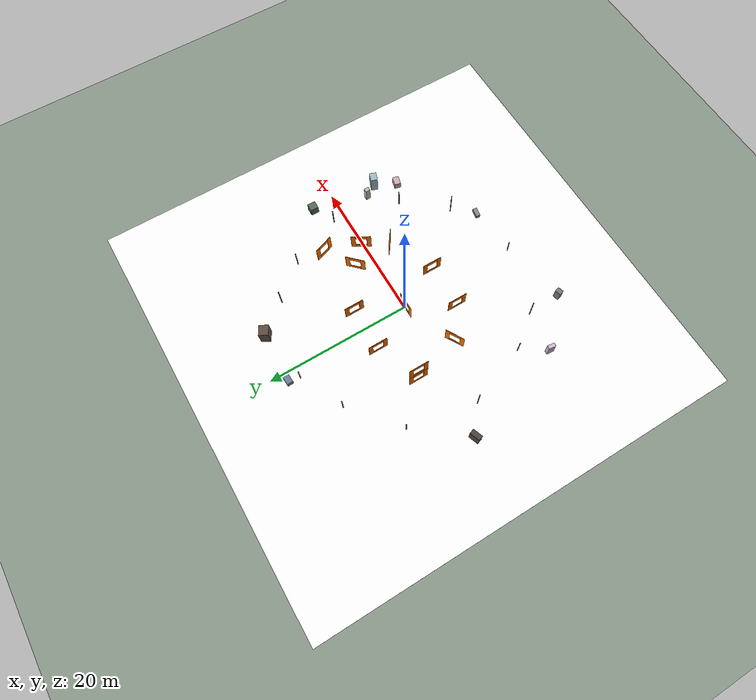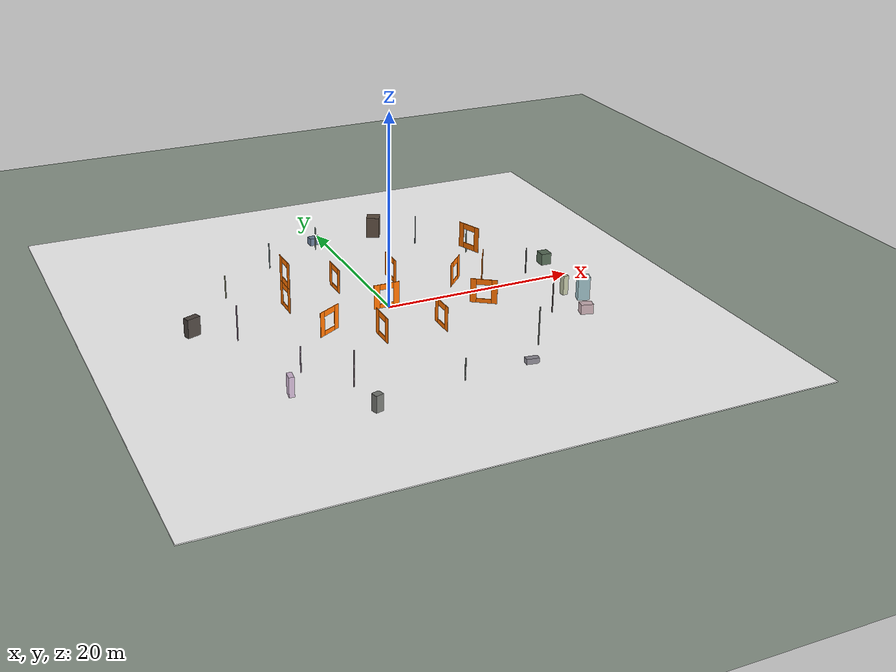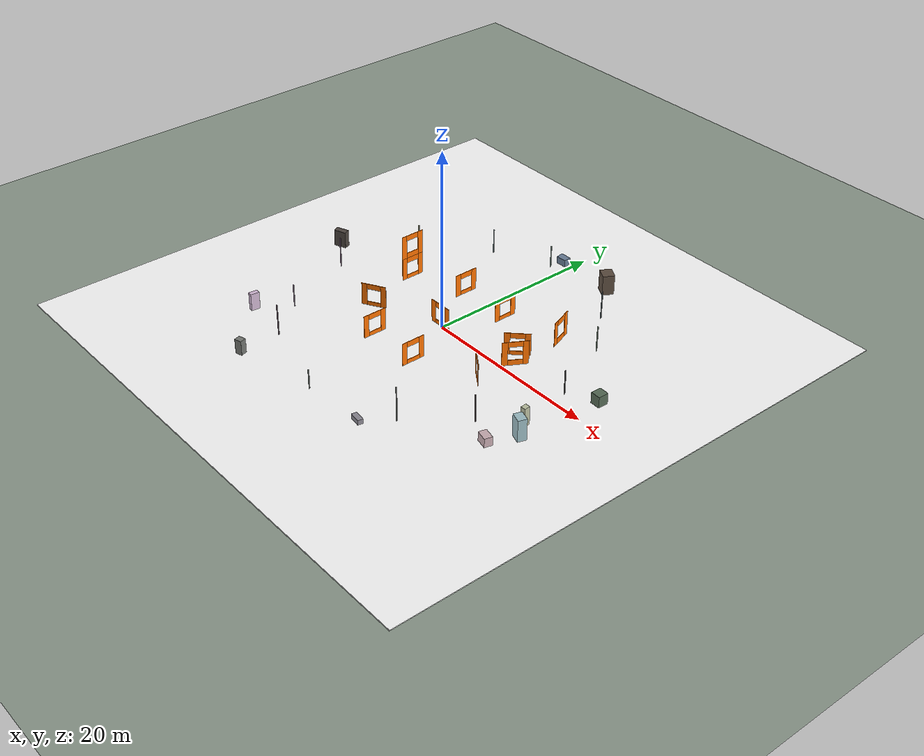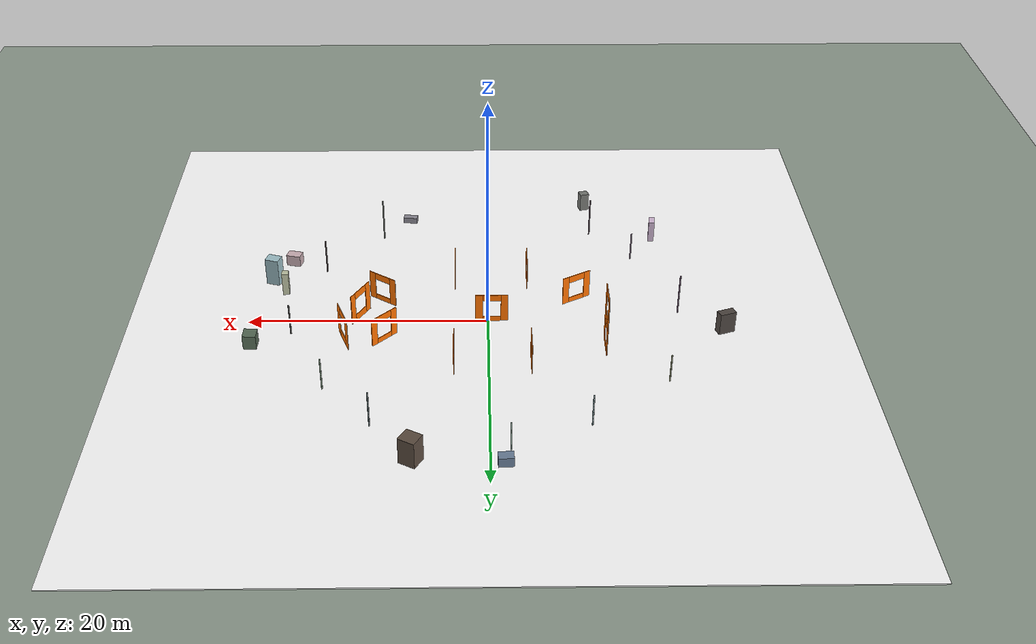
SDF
<sdf version="1.9">
 <world name="big_track">
  <plugin filename="gz-sim-physics-system" name="gz::sim::systems::Physics"/>
  <plugin filename="gz-sim-user-commands-system" name="gz::sim::systems::UserCommands"/>
  <plugin filename="gz-sim-scene-broadcaster-system" name="gz::sim::systems::SceneBroadcaster"/>
  <plugin filename="gz-sim-contact-system" name="gz::sim::systems::Contact"/>
  <plugin filename="gz-sim-imu-system" name="gz::sim::systems::Imu"/>
  <plugin filename="gz-sim-air-pressure-system" name="gz::sim::systems::AirPressure"/>
  <plugin filename="gz-sim-magnetometer-system" name="gz::sim::systems::Magnetometer"/>
  <plugin filename="gz-sim-navsat-system" name="gz::sim::systems::NavSat"/>
  <plugin filename="gz-sim-sensors-system" name="gz::sim::systems::Sensors">
   <render_engine>ogre2</render_engine>
  </plugin>
  <physics type="ode">
   <max_step_size>0.004</max_step_size>
   <real_time_factor>1.0</real_time_factor>
   <real_time_update_rate>250</real_time_update_rate>
  </physics>
  <gravity>0 0 -9.8</gravity>
  <magnetic_field>6e-06 2.3e-05 -4.2e-05</magnetic_field>
  <atmosphere type="adiabatic"/>
  <scene>
   <grid>false</grid>
   <ambient>0.4 0.4 0.4 1</ambient>
   <background>0.7 0.7 0.7 1</background>
   <shadows>true</shadows>
  </scene>
  <spherical_coordinates>
   <surface_model>EARTH_WGS84</surface_model>
   <world_frame_orientation>ENU</world_frame_orientation>
   <latitude_deg>47.397971057728974</latitude_deg>
   <longitude_deg>8.546163739800146</longitude_deg>
   <elevation>488</elevation>
  </spherical_coordinates>
  <light name="sun" type="directional">
   <pose>0 0 500 0 0 0</pose>
   <intensity>1</intensity>
   <direction>0.001 0.625 -0.78</direction>
   <diffuse>0.904 0.904 0.904 1</diffuse>
   <specular>0.271 0.271 0.271 1</specular>
   <attenuation><range>2000</range><linear>0</linear><constant>1</constant><quadratic>0</quadratic></attenuation>
  </light>
  <model name="ground_plane">
   <static>true</static>
   <pose>0 0 -0.02 0 0 0</pose>
   <link name="link">
    <collision name="collision">
     <geometry><plane><normal>0 0 1</normal><size>1 1</size></plane></geometry>
    </collision>
    <visual name="visual">
     <geometry><plane><normal>0 0 1</normal><size>200 200</size></plane></geometry>
     <material>
      <ambient>0.55 0.6 0.55 1</ambient>
      <diffuse>0.55 0.6 0.55 1</diffuse>
      <specular>0.2 0.2 0.2 1</specular>
     </material>
    </visual>
   </link>
  </model>
  <model name="pole_0">
   <static>true</static>
   <pose>16.268 1.687 1.421 0 0 0</pose>
   <link name="link">
    <visual name="visual">
     <geometry><cylinder><radius>0.06</radius><length>2.841</length></cylinder></geometry>
     <material>
      <ambient>0.38 0.38 0.37 1</ambient>
      <diffuse>0.38 0.38 0.37 1</diffuse>
      <specular>0.1 0.1 0.1 1</specular>
     </material>
    </visual>
    <collision name="collision">
     <geometry><cylinder><radius>0.06</radius><length>2.841</length></cylinder></geometry>
    </collision>
   </link>
  </model>
  <model name="pole_1">
   <static>true</static>
   <pose>13.045 9.093 1.477 0 0 0</pose>
   <link name="link">
    <visual name="visual">
     <geometry><cylinder><radius>0.06</radius><length>2.953</length></cylinder></geometry>
     <material>
      <ambient>0.54 0.63 0.54 1</ambient>
      <diffuse>0.54 0.63 0.54 1</diffuse>
      <specular>0.1 0.1 0.1 1</specular>
     </material>
    </visual>
    <collision name="collision">
     <geometry><cylinder><radius>0.06</radius><length>2.953</length></cylinder></geometry>
    </collision>
   </link>
  </model>
  <model name="pole_2">
   <static>true</static>
   <pose>9.085 13.597 1.618 0 0 0</pose>
   <link name="link">
    <visual name="visual">
     <geometry><cylinder><radius>0.06</radius><length>3.237</length></cylinder></geometry>
     <material>
      <ambient>0.38 0.44 0.45 1</ambient>
      <diffuse>0.38 0.44 0.45 1</diffuse>
      <specular>0.1 0.1 0.1 1</specular>
     </material>
    </visual>
    <collision name="collision">
     <geometry><cylinder><radius>0.06</radius><length>3.237</length></cylinder></geometry>
    </collision>
   </link>
  </model>
  <model name="pole_3">
   <static>true</static>
   <pose>-1.533 16.428 1.310 0 0 0</pose>
   <link name="link">
    <visual name="visual">
     <geometry><cylinder><radius>0.06</radius><length>2.620</length></cylinder></geometry>
     <material>
      <ambient>0.61 0.71 0.66 1</ambient>
      <diffuse>0.61 0.71 0.66 1</diffuse>
      <specular>0.1 0.1 0.1 1</specular>
     </material>
    </visual>
    <collision name="collision">
     <geometry><cylinder><radius>0.06</radius><length>2.620</length></cylinder></geometry>
    </collision>
   </link>
  </model>
  <model name="pole_4">
   <static>true</static>
   <pose>-7.735 13.660 1.434 0 0 0</pose>
   <link name="link">
    <visual name="visual">
     <geometry><cylinder><radius>0.06</radius><length>2.868</length></cylinder></geometry>
     <material>
      <ambient>0.56 0.65 0.66 1</ambient>
      <diffuse>0.56 0.65 0.66 1</diffuse>
      <specular>0.1 0.1 0.1 1</specular>
     </material>
    </visual>
    <collision name="collision">
     <geometry><cylinder><radius>0.06</radius><length>2.868</length></cylinder></geometry>
    </collision>
   </link>
  </model>
  <model name="pole_5">
   <static>true</static>
   <pose>-14.200 8.330 1.260 0 0 0</pose>
   <link name="link">
    <visual name="visual">
     <geometry><cylinder><radius>0.06</radius><length>2.521</length></cylinder></geometry>
     <material>
      <ambient>0.65 0.67 0.53 1</ambient>
      <diffuse>0.65 0.67 0.53 1</diffuse>
      <specular>0.1 0.1 0.1 1</specular>
     </material>
    </visual>
    <collision name="collision">
     <geometry><cylinder><radius>0.06</radius><length>2.521</length></cylinder></geometry>
    </collision>
   </link>
  </model>
  <model name="pole_6">
   <static>true</static>
   <pose>-15.962 -1.054 1.825 0 0 0</pose>
   <link name="link">
    <visual name="visual">
     <geometry><cylinder><radius>0.06</radius><length>3.650</length></cylinder></geometry>
     <material>
      <ambient>0.58 0.47 0.58 1</ambient>
      <diffuse>0.58 0.47 0.58 1</diffuse>
      <specular>0.1 0.1 0.1 1</specular>
     </material>
    </visual>
    <collision name="collision">
     <geometry><cylinder><radius>0.06</radius><length>3.650</length></cylinder></geometry>
    </collision>
   </link>
  </model>
  <model name="pole_7">
   <static>true</static>
   <pose>-12.764 -9.383 1.325 0 0 0</pose>
   <link name="link">
    <visual name="visual">
     <geometry><cylinder><radius>0.06</radius><length>2.650</length></cylinder></geometry>
     <material>
      <ambient>0.69 0.60 0.70 1</ambient>
      <diffuse>0.69 0.60 0.70 1</diffuse>
      <specular>0.1 0.1 0.1 1</specular>
     </material>
    </visual>
    <collision name="collision">
     <geometry><cylinder><radius>0.06</radius><length>2.650</length></cylinder></geometry>
    </collision>
   </link>
  </model>
  <model name="pole_8">
   <static>true</static>
   <pose>-9.381 -13.653 1.803 0 0 0</pose>
   <link name="link">
    <visual name="visual">
     <geometry><cylinder><radius>0.06</radius><length>3.606</length></cylinder></geometry>
     <material>
      <ambient>0.47 0.39 0.44 1</ambient>
      <diffuse>0.47 0.39 0.44 1</diffuse>
      <specular>0.1 0.1 0.1 1</specular>
     </material>
    </visual>
    <collision name="collision">
     <geometry><cylinder><radius>0.06</radius><length>3.606</length></cylinder></geometry>
    </collision>
   </link>
  </model>
  <model name="pole_9">
   <static>true</static>
   <pose>0.039 -16.530 1.109 0 0 0</pose>
   <link name="link">
    <visual name="visual">
     <geometry><cylinder><radius>0.06</radius><length>2.218</length></cylinder></geometry>
     <material>
      <ambient>0.53 0.57 0.54 1</ambient>
      <diffuse>0.53 0.57 0.54 1</diffuse>
      <specular>0.1 0.1 0.1 1</specular>
     </material>
    </visual>
    <collision name="collision">
     <geometry><cylinder><radius>0.06</radius><length>2.218</length></cylinder></geometry>
    </collision>
   </link>
  </model>
  <model name="pole_10">
   <static>true</static>
   <pose>9.350 -13.154 1.964 0 0 0</pose>
   <link name="link">
    <visual name="visual">
     <geometry><cylinder><radius>0.06</radius><length>3.928</length></cylinder></geometry>
     <material>
      <ambient>0.55 0.57 0.54 1</ambient>
      <diffuse>0.55 0.57 0.54 1</diffuse>
      <specular>0.1 0.1 0.1 1</specular>
     </material>
    </visual>
    <collision name="collision">
     <geometry><cylinder><radius>0.06</radius><length>3.928</length></cylinder></geometry>
    </collision>
   </link>
  </model>
  <model name="pole_11">
   <static>true</static>
   <pose>14.066 -7.588 1.576 0 0 0</pose>
   <link name="link">
    <visual name="visual">
     <geometry><cylinder><radius>0.06</radius><length>3.151</length></cylinder></geometry>
     <material>
      <ambient>0.40 0.35 0.35 1</ambient>
      <diffuse>0.40 0.35 0.35 1</diffuse>
      <specular>0.1 0.1 0.1 1</specular>
     </material>
    </visual>
    <collision name="collision">
     <geometry><cylinder><radius>0.06</radius><length>3.151</length></cylinder></geometry>
    </collision>
   </link>
  </model>
  <model name="box_0">
   <static>true</static>
   <pose>-14.976 -12.836 1.008 0 0 1.450</pose>
   <link name="link">
    <visual name="visual">
     <geometry><box><size>0.972 0.508 2.015</size></box></geometry>
     <material>
      <ambient>0.83 0.73 0.84 1</ambient>
      <diffuse>0.83 0.73 0.84 1</diffuse>
      <specular>0.1 0.1 0.1 1</specular>
     </material>
    </visual>
    <collision name="collision"><geometry><box><size>0.972 0.508 2.015</size></box></geometry></collision>
   </link>
  </model>
  <model name="box_1">
   <static>true</static>
   <pose>17.054 -8.950 0.526 0 0 1.334</pose>
   <link name="link">
    <visual name="visual">
     <geometry><box><size>0.870 1.246 1.051</size></box></geometry>
     <material>
      <ambient>0.80 0.69 0.71 1</ambient>
      <diffuse>0.80 0.69 0.71 1</diffuse>
      <specular>0.1 0.1 0.1 1</specular>
     </material>
    </visual>
    <collision name="collision"><geometry><box><size>0.870 1.246 1.051</size></box></geometry></collision>
   </link>
  </model>
  <model name="box_2">
   <static>true</static>
   <pose>18.457 -6.027 1.246 0 0 1.246</pose>
   <link name="link">
    <visual name="visual">
     <geometry><box><size>0.941 1.192 2.493</size></box></geometry>
     <material>
      <ambient>0.62 0.75 0.78 1</ambient>
      <diffuse>0.62 0.75 0.78 1</diffuse>
      <specular>0.1 0.1 0.1 1</specular>
     </material>
    </visual>
    <collision name="collision"><geometry><box><size>0.941 1.192 2.493</size></box></geometry></collision>
   </link>
  </model>
  <model name="box_3">
   <static>true</static>
   <pose>-19.547 1.669 0.981 0 0 0.346</pose>
   <link name="link">
    <visual name="visual">
     <geometry><box><size>1.414 0.692 1.963</size></box></geometry>
     <material>
      <ambient>0.30 0.27 0.25 1</ambient>
      <diffuse>0.30 0.27 0.25 1</diffuse>
      <specular>0.1 0.1 0.1 1</specular>
     </material>
    </visual>
    <collision name="collision"><geometry><box><size>1.414 0.692 1.963</size></box></geometry></collision>
   </link>
  </model>
  <model name="box_4">
   <static>true</static>
   <pose>7.042 -16.021 0.295 0 0 1.429</pose>
   <link name="link">
    <visual name="visual">
     <geometry><box><size>0.576 1.237 0.590</size></box></geometry>
     <material>
      <ambient>0.55 0.54 0.58 1</ambient>
      <diffuse>0.55 0.54 0.58 1</diffuse>
      <specular>0.1 0.1 0.1 1</specular>
     </material>
    </visual>
    <collision name="collision"><geometry><box><size>0.576 1.237 0.590</size></box></geometry></collision>
   </link>
  </model>
  <model name="box_5">
   <static>true</static>
   <pose>19.362 3.279 0.641 0 0 1.539</pose>
   <link name="link">
    <visual name="visual">
     <geometry><box><size>1.128 1.091 1.282</size></box></geometry>
     <material>
      <ambient>0.34 0.42 0.34 1</ambient>
      <diffuse>0.34 0.42 0.34 1</diffuse>
      <specular>0.1 0.1 0.1 1</specular>
     </material>
    </visual>
    <collision name="collision"><geometry><box><size>1.128 1.091 1.282</size></box></geometry></collision>
   </link>
  </model>
  <model name="box_6">
   <static>true</static>
   <pose>17.305 -4.324 1.051 0 0 0.036</pose>
   <link name="link">
    <visual name="visual">
     <geometry><box><size>0.549 0.653 2.101</size></box></geometry>
     <material>
      <ambient>0.74 0.76 0.64 1</ambient>
      <diffuse>0.74 0.76 0.64 1</diffuse>
      <specular>0.1 0.1 0.1 1</specular>
     </material>
    </visual>
    <collision name="collision"><geometry><box><size>0.549 0.653 2.101</size></box></geometry></collision>
   </link>
  </model>
  <model name="box_7">
   <static>true</static>
   <pose>-1.120 17.946 0.430 0 0 0.062</pose>
   <link name="link">
    <visual name="visual">
     <geometry><box><size>1.176 0.820 0.861</size></box></geometry>
     <material>
      <ambient>0.42 0.50 0.60 1</ambient>
      <diffuse>0.42 0.50 0.60 1</diffuse>
      <specular>0.1 0.1 0.1 1</specular>
     </material>
    </visual>
    <collision name="collision"><geometry><box><size>1.176 0.820 0.861</size></box></geometry></collision>
   </link>
  </model>
  <model name="box_8">
   <static>true</static>
   <pose>5.798 17.601 1.168 0 0 1.056</pose>
   <link name="link">
    <visual name="visual">
     <geometry><box><size>1.278 1.406 2.337</size></box></geometry>
     <material>
      <ambient>0.36 0.30 0.25 1</ambient>
      <diffuse>0.36 0.30 0.25 1</diffuse>
      <specular>0.1 0.1 0.1 1</specular>
     </material>
    </visual>
    <collision name="collision"><geometry><box><size>1.278 1.406 2.337</size></box></geometry></collision>
   </link>
  </model>
  <model name="box_9">
   <static>true</static>
   <pose>-9.159 -18.317 0.847 0 0 0.274</pose>
   <link name="link">
    <visual name="visual">
     <geometry><box><size>0.811 0.701 1.694</size></box></geometry>
     <material>
      <ambient>0.46 0.47 0.45 1</ambient>
      <diffuse>0.46 0.47 0.45 1</diffuse>
      <specular>0.1 0.1 0.1 1</specular>
     </material>
    </visual>
    <collision name="collision"><geometry><box><size>0.811 0.701 1.694</size></box></geometry></collision>
   </link>
  </model>
  <include><uri>model://adr_ground</uri><name>adr_ground</name></include>
  <include>
   <uri>model://adr_gate_big_track</uri>
   <name>gate_1</name>
   <pose>-9.5 3.7 1.25 0 0 0.000000</pose>
  </include>
  <include>
   <uri>model://adr_gate_big_track</uri>
   <name>gate_2</name>
   <pose>-3.4 6.0 1.25 0 0 0.000000</pose>
  </include>
  <include>
   <uri>model://adr_gate_big_track</uri>
   <name>gate_3</name>
   <pose>2.8 6.0 1.25 0 0 0.000000</pose>
  </include>
  <include>
   <uri>model://adr_gate_big_track</uri>
   <name>gate_4</name>
   <pose>8.5 2.6 1.25 0 0 5.497787</pose>
  </include>
  <include>
   <uri>model://adr_gate_big_track</uri>
   <name>gate_5</name>
   <pose>11.5 5.5 3.45 0 0 3.490659</pose>
  </include>
  <include>
   <uri>model://adr_gate_big_track</uri>
   <name>gate_6</name>
   <pose>10.5 0.5 2.25 0 0 5.759587</pose>
  </include>
  <include>
   <uri>model://adr_gate_big_track</uri>
   <name>gate_7</name>
   <pose>8.9 -3.0 1.25 0 0 4.101524</pose>
  </include>
  <include>
   <uri>model://adr_gate_big_track</uri>
   <name>gate_8</name>
   <pose>2.8 -6.0 1.25 0 0 3.141593</pose>
  </include>
  <include>
   <uri>model://adr_gate_big_track</uri>
   <name>gate_9</name>
   <pose>-3.4 -6.0 1.25 0 0 3.141593</pose>
  </include>
  <include>
   <uri>model://adr_gate_big_track</uri>
   <name>gate_10</name>
   <pose>-7.5 -3.0 1.25 0 0 2.094395</pose>
  </include>
  <include>
   <uri>model://adr_gate_big_track</uri>
   <name>gate_11</name>
   <pose>-0.3 0.0 1.25 0 0 1.570796</pose>
  </include>
  <include>
   <uri>model://adr_gate_big_track</uri>
   <name>gate_12</name>
   <pose>-9.5 3.7 3.95 0 0 3.141593</pose>
  </include>
 </world>
</sdf>

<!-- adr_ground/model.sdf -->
<!-- 자동 생성: adr_sim/scripts/gen_world.py (입력: adr_sim/config/scene.yaml). 직접 수정하지 말 것.
     VIO 특징점용 텍스처 바닥. 60 x 60 m, 윗면 z=0. -->
<sdf version="1.9">
  <model name="adr_ground">
    <static>true</static>
    <pose>0 0 -0.05 0 0 0</pose>
    <link name="link">
      <visual name="visual">
        <geometry><box><size>60 60 0.1</size></box></geometry>
        <material>
          <ambient>0.8 0.8 0.8 1</ambient>
          <diffuse>1 1 1 1</diffuse>
          <specular>0.1 0.1 0.1 1</specular>
          <pbr>
            <metal>
              <albedo_map>model://adr_ground/materials/textures/ground.png</albedo_map>
              <metalness>0.0</metalness>
              <roughness>0.9</roughness>
            </metal>
          </pbr>
        </material>
      </visual>
      <collision name="collision">
        <geometry><box><size>60 60 0.1</size></box></geometry>
        <surface><friction><ode/></friction><contact/></surface>
      </collision>
    </link>
  </model>
</sdf>

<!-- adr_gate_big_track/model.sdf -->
<!-- 자동 생성: adr_sim/scripts/gen_world.py (입력: 맵 yaml 의 gate:). 직접 수정하지 말 것.
     정사각 레이싱 게이트. 내부 1.5 m, 외부 2.7 m (프레임 폭 0.6 m), 두께 0.05 m.
     원점 = 개구부 중심, +x = 통과 방향(법선). static 이라 공중에 고정된다(다리 없음). -->
<sdf version="1.9">
  <model name="adr_gate_big_track">
    <static>true</static>
    <link name="left">
      <pose>0 1.05 0 0 0 0</pose>
      <visual name="left_visual">
        <geometry><box><size>0.05 0.6 2.7</size></box></geometry>
        <material>
          <ambient>1.0 0.45 0.0 1</ambient>
          <diffuse>1.0 0.45 0.0 1</diffuse>
          <specular>0.2 0.2 0.2 1</specular>
        </material>
      </visual>
      <collision name="left_collision">
        <geometry><box><size>0.05 0.6 2.7</size></box></geometry>
      </collision>
    </link>
    <link name="right">
      <pose>0 -1.05 0 0 0 0</pose>
      <visual name="right_visual">
        <geometry><box><size>0.05 0.6 2.7</size></box></geometry>
        <material>
          <ambient>1.0 0.45 0.0 1</ambient>
          <diffuse>1.0 0.45 0.0 1</diffuse>
          <specular>0.2 0.2 0.2 1</specular>
        </material>
      </visual>
      <collision name="right_collision">
        <geometry><box><size>0.05 0.6 2.7</size></box></geometry>
      </collision>
    </link>
    <link name="top">
      <pose>0 0 1.05 0 0 0</pose>
      <visual name="top_visual">
        <geometry><box><size>0.05 1.5 0.6</size></box></geometry>
        <material>
          <ambient>1.0 0.45 0.0 1</ambient>
          <diffuse>1.0 0.45 0.0 1</diffuse>
          <specular>0.2 0.2 0.2 1</specular>
        </material>
      </visual>
      <collision name="top_collision">
        <geometry><box><size>0.05 1.5 0.6</size></box></geometry>
      </collision>
    </link>
    <link name="bottom">
      <pose>0 0 -1.05 0 0 0</pose>
      <visual name="bottom_visual">
        <geometry><box><size>0.05 1.5 0.6</size></box></geometry>
        <material>
          <ambient>1.0 0.45 0.0 1</ambient>
          <diffuse>1.0 0.45 0.0 1</diffuse>
          <specular>0.2 0.2 0.2 1</specular>
        </material>
      </visual>
      <collision name="bottom_collision">
        <geometry><box><size>0.05 1.5 0.6</size></box></geometry>
      </collision>
    </link>
  </model>
</sdf>
